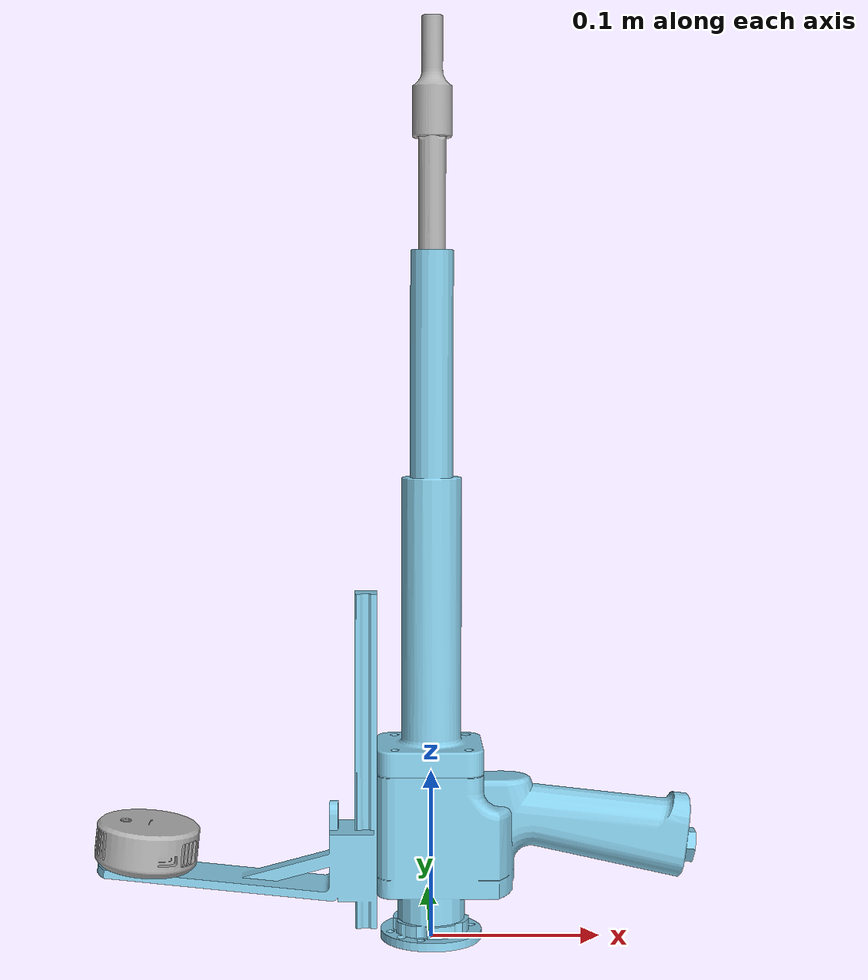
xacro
<?xml version="1.0" encoding="utf-8"?>
<robot
  name="socket_describe">
  <link
    name="pneumatic_base_link">
    <inertial>
      <origin
        xyz="0.0099146 -5.4634E-05 0.088854"
        rpy="0 0 0" />
      <mass
        value="0.64615" />
      <inertia
        ixx="0.00070554"
        ixy="-1.6495E-06"
        ixz="2.4231E-05"
        iyy="0.0016576"
        iyz="1.9116E-06"
        izz="0.0011985" />
    </inertial>
    <visual>
      <origin
        xyz="0 0 0"
        rpy="0 0 0" />
      <geometry>
        <mesh
          filename="package://socket_describe/meshes/pneumatic_base_link.STL" />
      </geometry>
      <material
        name="">
        <color
          rgba="0.53 0.81 0.92 1" />
      </material>
    </visual>
    <collision>
      <origin
        xyz="0 0 0"
        rpy="0 0 0" />
      <geometry>
        <mesh
          filename="package://socket_describe/meshes/pneumatic_base_link.STL" />
      </geometry>
    </collision>
  </link>
  <link
    name="camera_Link">
    <inertial>
      <origin
        xyz="0.013488 7.0938E-05 -0.013332"
        rpy="0 0 0" />
      <mass
        value="0.071592" />
      <inertia
        ixx="2.0232E-05"
        ixy="-4.6475E-08"
        ixz="5.1114E-10"
        iyy="1.9381E-05"
        iyz="-4.5469E-09"
        izz="3.1685E-05" />
    </inertial>
    <visual>
      <origin
        xyz="0 0 0"
        rpy="0 0 0" />
      <geometry>
        <mesh
          filename="package://socket_describe/meshes/camera_Link.STL" />
      </geometry>
      <material
        name="">
        <color
          rgba="0.7 0.7 0.7 1.0" />
      </material>
    </visual>
    <collision>
      <origin
        xyz="0 0 0"
        rpy="0 0 0" />
      <geometry>
        <mesh
          filename="package://socket_describe/meshes/camera_Link.STL" />
      </geometry>
    </collision>
  </link>
  <joint
    name="camera_Joint"
    type="fixed">
    <origin
      xyz="-0.18055 -0.00090604 0.071047"
      rpy="0.016843 0.10474 0.0017763" />
    <parent
      link="pneumatic_base_link" />
    <child
      link="camera_Link" />
    <axis
      xyz="0 0 0" />
  </joint>
  <link
    name="sleeve_Link">
    <inertial>
      <origin
        xyz="-3.2497E-09 2.024E-09 -0.16147"
        rpy="0 0 0" />
      <mass
        value="0.059949" />
      <inertia
        ixx="0.00026672"
        ixy="3.9947E-13"
        ixz="1.5755E-11"
        iyy="0.00026672"
        iyz="-9.4277E-12"
        izz="2.6369E-06" />
    </inertial>
    <visual>
      <origin
        xyz="0 0 0"
        rpy="0 0 0" />
      <geometry>
        <mesh
          filename="package://socket_describe/meshes/sleeve_Link.STL" />
      </geometry>
      <material
        name="">
        <color
          rgba="0.7 0.7 0.7 1.0" />
      </material>
    </visual>
    <collision>
      <origin
        xyz="0 0 0"
        rpy="0 0 0" />
      <geometry>
        <mesh
          filename="package://socket_describe/meshes/sleeve_Link.STL" />
      </geometry>
    </collision>
  </link>
  <joint
    name="effect_Joint"
    type="continuous">
    <origin
      xyz="0 0 0.53934"
      rpy="0 0 0" />
    <parent
      link="pneumatic_base_link" />
    <child
      link="sleeve_Link" />
    <axis
      xyz="0 0 0" />
    <limit
      lower="0"
      upper="0"
      effort="0"
      velocity="0" />
  </joint>
</robot>
